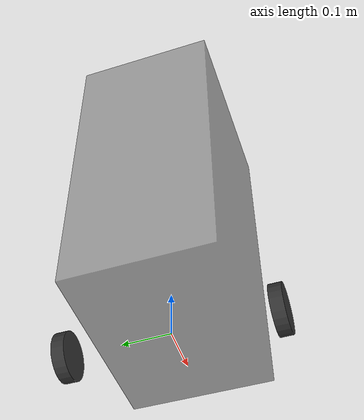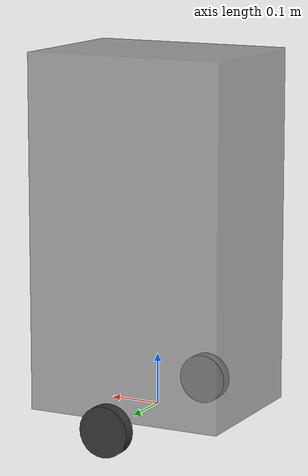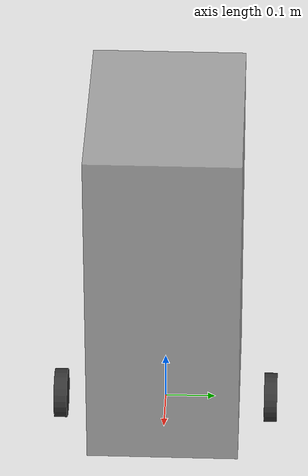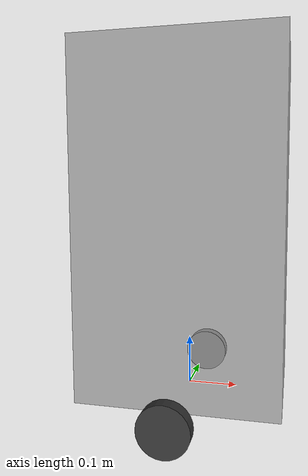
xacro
<?xml version="1.0"?>
<robot xmlns:xacro="http://www.ros.org/wiki/xacro" name="material_transfer_robot">
  <xacro:property name="body_length" value="0.40"/>
  <xacro:property name="body_width" value="0.30"/>
  <xacro:property name="body_height" value="0.70"/>
  <xacro:property name="camera_height" value="0.746"/>
  <xacro:property name="camera_forward" value="0.174"/>
  <xacro:property name="camera_tilt" value="0.5236"/>
  <xacro:property name="wheel_radius" value="0.05"/>
  <xacro:property name="wheel_width" value="0.026"/>
  <xacro:property name="wheel_y_offset" value="0.063"/>
  <!-- ZED SENSOR FRAME — physical camera mount point, child of base_link -->
  <link name="zed_sensor_frame"/>
  <joint name="base_to_sensor_frame_joint" type="fixed">
    <parent link="base_link"/>
    <child link="zed_sensor_frame"/>
    <origin xyz="${camera_forward} 0 ${-wheel_radius}" rpy="0 0 0"/>
  </joint>
  <!-- ZED CAMERA LINK — zero-offset child of zed_sensor_frame -->
  <!-- Keeps zed_camera_link in the URDF tree without a direct base_link→zed_camera_link joint,
       so ZED TF publishing cannot drag base_link via inverse path resolution -->
  <link name="zed_camera_link"/>
  <joint name="sensor_frame_to_camera_link_joint" type="fixed">
    <parent link="zed_sensor_frame"/>
    <child link="zed_camera_link"/>
    <origin xyz="0 0 0" rpy="0 0 0"/>
  </joint>
  <!-- Camera mount frame: true physical pose (height + tilt) -->
  <link name="camera_mount"/>
  <joint name="base_to_camera_mount" type="fixed">
    <parent link="base_link"/>
    <child link="camera_mount"/>
    <!-- Raise by camera_height and apply tilt (no forward offset here) -->
    <origin xyz="${camera_forward} 0 ${camera_height}" rpy="0 ${camera_tilt} 0"/>
  </joint>
  <!-- Ground frame at floor level -->
  <link name="ground"/>
  <joint name="base_to_ground" type="fixed">
    <parent link="base_link"/>
    <child link="ground"/>
    <origin xyz="0 0 ${-wheel_radius}" rpy="0 0 0"/>
  </joint>
  <link name="base_link">
    <visual>
      <geometry>
        <box size="${body_length} ${body_width} ${body_height}"/>
      </geometry>
      <!-- Body center is at half height above base_link origin (ground level) -->
      <origin xyz="0 0 ${body_height/2}" rpy="0 0 0"/>
      <material name="grey">
        <color rgba="0.6 0.6 0.6 0.8"/>
      </material>
    </visual>
    <collision>
      <geometry>
        <box size="${body_length} ${body_width} ${body_height}"/>
      </geometry>
      <origin xyz="0 0 ${body_height/2}" rpy="0 0 0"/>
    </collision>
  </link>
  <!-- LEFT WHEEL -->
  <joint name="left_wheel_joint" type="fixed">
    <parent link="base_link"/>
    <child link="left_wheel"/>
    <origin xyz="0 ${body_width/2 + wheel_y_offset} 0" rpy="${-pi/2} 0 0"/>
  </joint>
  <link name="left_wheel">
    <visual>
      <geometry>
        <cylinder radius="${wheel_radius}" length="${wheel_width}"/>
      </geometry>
      <material name="dark_grey">
        <color rgba="0.2 0.2 0.2 1.0"/>
      </material>
    </visual>
    <collision>
      <geometry>
        <cylinder radius="${wheel_radius}" length="${wheel_width}"/>
      </geometry>
    </collision>
  </link>
  <!-- RIGHT WHEEL -->
  <joint name="right_wheel_joint" type="fixed">
    <parent link="base_link"/>
    <child link="right_wheel"/>
    <origin xyz="0 ${-body_width/2 - wheel_y_offset} 0" rpy="${-pi/2} 0 0"/>
  </joint>
  <link name="right_wheel">
    <visual>
      <geometry>
        <cylinder radius="${wheel_radius}" length="${wheel_width}"/>
      </geometry>
      <material name="dark_grey">
        <color rgba="0.2 0.2 0.2 1.0"/>
      </material>
    </visual>
    <collision>
      <geometry>
        <cylinder radius="${wheel_radius}" length="${wheel_width}"/>
      </geometry>
    </collision>
  </link>
</robot>
